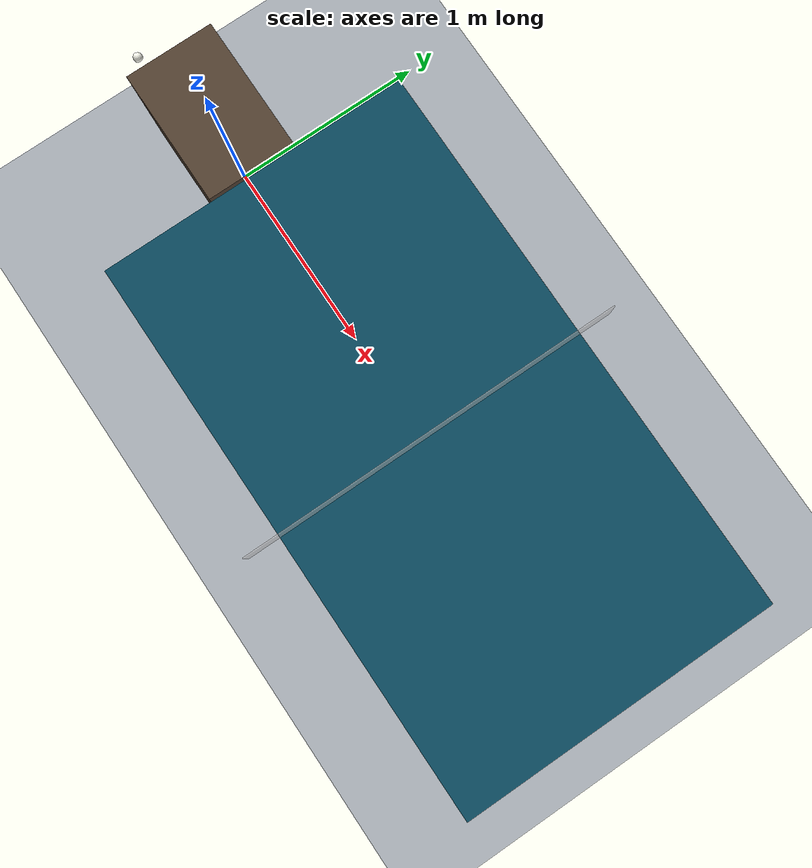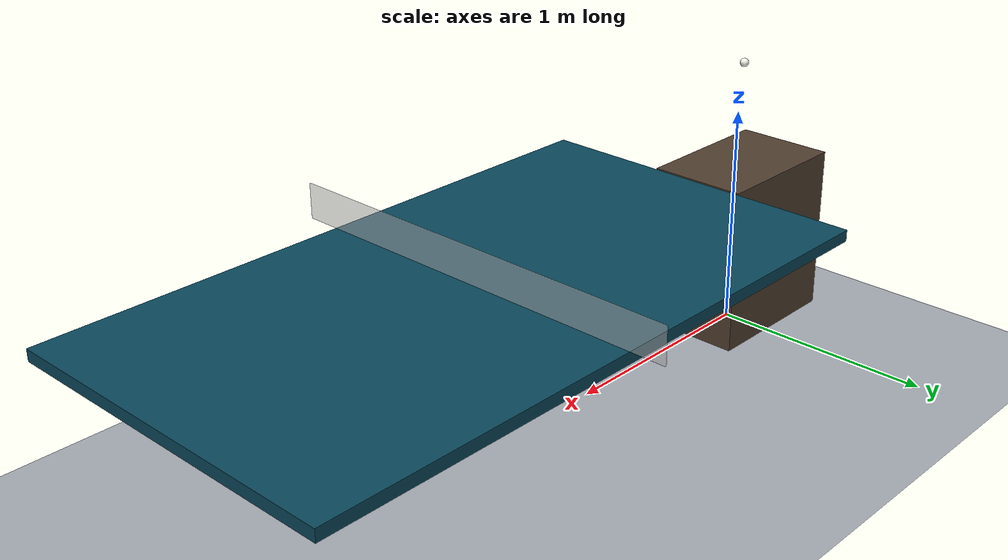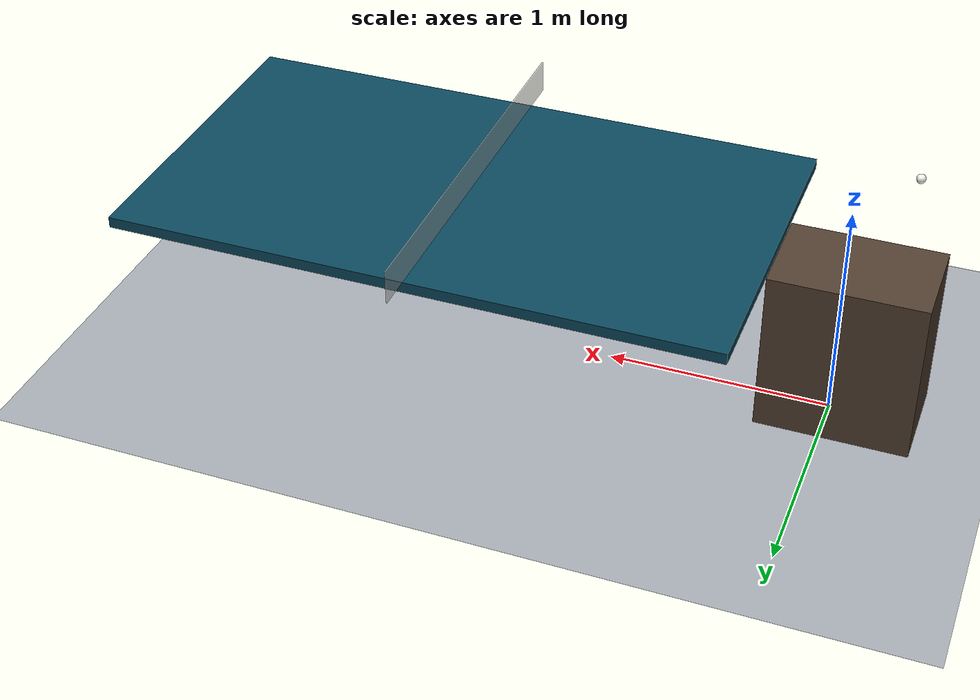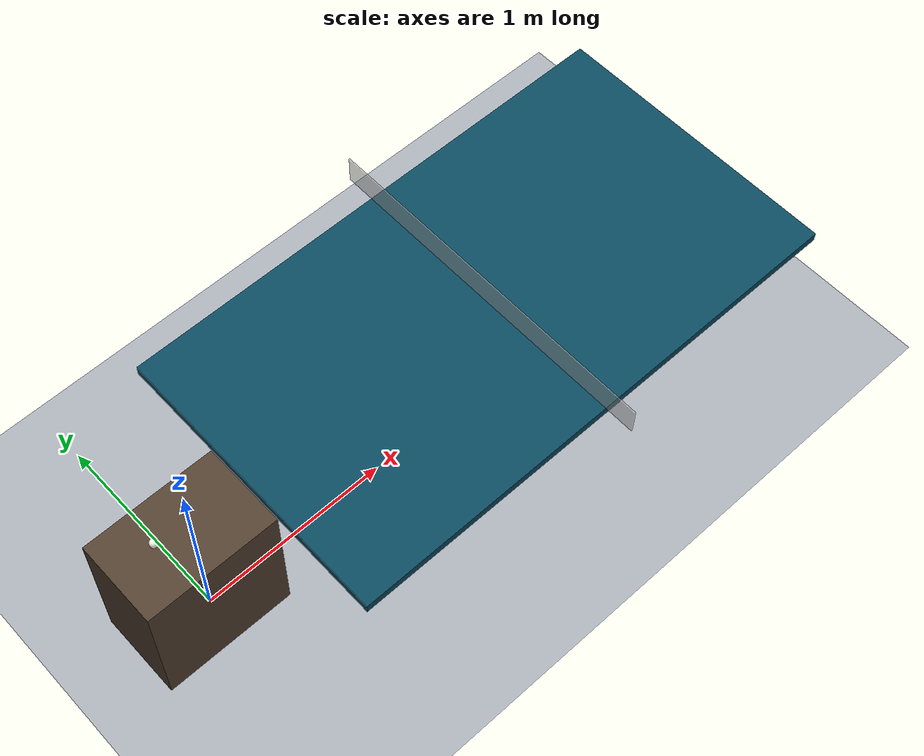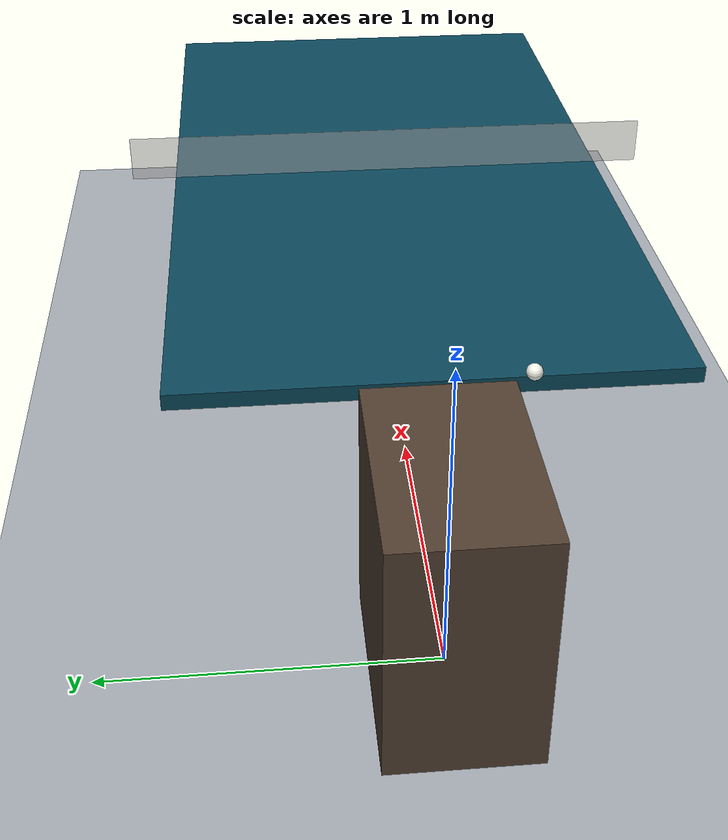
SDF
<sdf version="1.8">
 <world name="full_1_native_bullet">
  <physics name="1ms" type="ignored">
   <max_step_size>0.001</max_step_size>
   <real_time_factor>1</real_time_factor>
  </physics>
  <gravity>0 0 -9.81</gravity>
  <plugin filename="ignition-gazebo-physics-system" name="ignition::gazebo::systems::Physics">
   <engine filename="ignition-physics-bullet-plugin"/>
  </plugin>
  <plugin filename="ignition-gazebo-user-commands-system" name="ignition::gazebo::systems::UserCommands"/>
  <plugin filename="ignition-gazebo-scene-broadcaster-system" name="ignition::gazebo::systems::SceneBroadcaster"/>
  <scene>
   <ambient>0.6 0.6 0.6 1</ambient>
   <background>0.85 0.89 0.94 1</background>
   <shadows>true</shadows>
  </scene>
  <light name="sun" type="directional">
   <pose>0 0 6 0 0 0</pose>
   <direction>-0.4 0.3 -1</direction>
   <diffuse>0.9 0.9 0.9 1</diffuse>
   <specular>0.2 0.2 0.2 1</specular>
  </light>
  <model name="ground">
   <static>true</static>
   <link name="ground_link">
    <collision name="floor">
     <geometry><plane><normal>0 0 1</normal><size>20 20</size></plane></geometry>
    </collision>
    <visual name="floor_visual">
     <geometry><plane><normal>0 0 1</normal><size>20 20</size></plane></geometry>
     <material><ambient>0.65 0.67 0.7 1</ambient><diffuse>0.65 0.67 0.7 1</diffuse></material>
    </visual>
   </link>
  </model>
  <model name="table">
   <static>true</static>
   <pose>1.6700000000000002 0.0 0.735 0.0 0.0 0.0</pose>
   <link name="top">
    <collision name="top">
     <geometry><box><size>2.74 1.525 0.05</size></box></geometry>
     <surface>
      <bounce><restitution_coefficient>0.85</restitution_coefficient><threshold>0.1</threshold></bounce>
      <friction><ode><mu>0.3</mu><mu2>0.3</mu2></ode></friction>
     </surface>
    </collision>
    <visual name="top_visual">
     <geometry><box><size>2.74 1.525 0.05</size></box></geometry>
     <material><ambient>0.04 0.28 0.36 1</ambient><diffuse>0.04 0.28 0.36 1</diffuse></material>
    </visual>
   </link>
  </model>
  <model name="net">
   <static>true</static>
   <pose>1.6700000000000002 0.0 0.83625 0.0 0.0 0.0</pose>
   <link name="net_link">
    <collision name="net"><geometry><box><size>0.005 1.83 0.1525</size></box></geometry></collision>
    <visual name="net_visual">
     <geometry><box><size>0.005 1.83 0.1525</size></box></geometry>
     <material><ambient>0.8 0.8 0.8 1</ambient><diffuse>0.8 0.8 0.8 1</diffuse></material>
     <transparency>0.45</transparency>
    </visual>
   </link>
  </model>
  <model name="launcher_bench">
   <static>true</static>
   <link name="bench">
    <collision name="bench">
     <pose>-0.0525 0 0.3795 0 0 0</pose>
     <geometry><box><size>0.675 0.44 0.759</size></box></geometry>
     <surface>
      <friction><ode><mu>0.3</mu><mu2>0.3</mu2></ode></friction>
      <bounce><restitution_coefficient>0.1</restitution_coefficient><threshold>0.1</threshold></bounce>
     </surface>
    </collision>
    <visual name="bench_visual">
     <pose>-0.0525 0 0.3795 0 0 0</pose>
     <geometry><box><size>0.675 0.44 0.759</size></box></geometry>
     <material><ambient>.32 .25 .19 1</ambient><diffuse>.32 .25 .19 1</diffuse></material>
    </visual>
   </link>
  </model>
  <model name="inventory_ball_001">
   <static>false</static>
   <pose>-0.23351634392092527 -0.14228499354686641 1.1430650175910217 0 0 0</pose>
   <link name="ball_link">
    <inertial>
     <mass>0.0027000000000000001</mass>
     <inertia>
      <ixx>7.1999999999999999e-07</ixx>
      <iyy>7.1999999999999999e-07</iyy>
      <izz>7.1999999999999999e-07</izz>
      <ixy>0</ixy>
      <ixz>0</ixz>
      <iyz>0</iyz>
     </inertia>
    </inertial>
    <collision name="ball_collision">
     <geometry><sphere><radius>0.02</radius></sphere></geometry>
     <surface>
      <friction><ode><mu>0.3</mu><mu2>0.3</mu2></ode></friction>
      <bounce><restitution_coefficient>0.8</restitution_coefficient><threshold>0.01</threshold></bounce>
     </surface>
    </collision>
    <visual name="ball_visual">
     <geometry><sphere><radius>0.02</radius></sphere></geometry>
     <material><ambient>0.96 0.96 0.92 1</ambient><diffuse>0.96 0.96 0.92 1</diffuse></material>
    </visual>
   </link>
  </model>
 </world>
</sdf>
